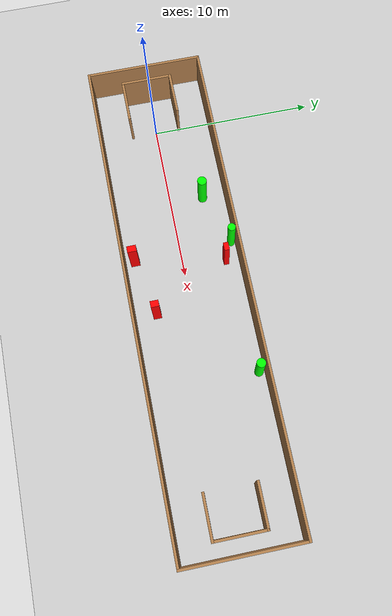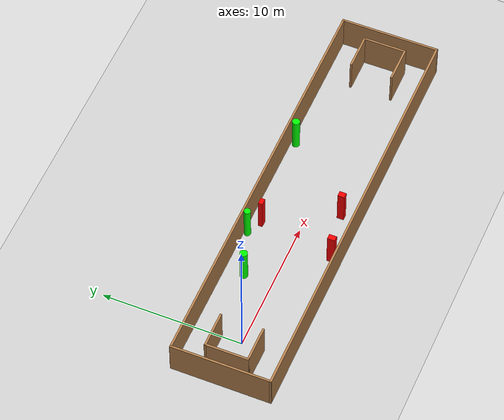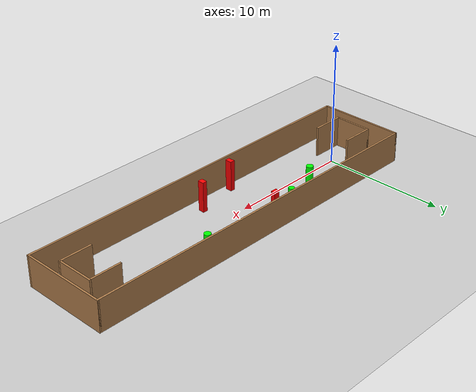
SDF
<sdf version="1.7">
 <world name="default">
  <light name="sun" type="directional">
   <pose>0 0 10 0 -0 0</pose>
   <diffuse>0.8 0.8 0.8 1</diffuse>
   <specular>0.2 0.2 0.2 1</specular>
   <attenuation>
    <range>1000</range>
    <constant>0.9</constant>
    <linear>0.01</linear>
    <quadratic>0.001</quadratic>
   </attenuation>
   <direction>-0.5 0.1 -0.9</direction>
   <spot><inner_angle>0</inner_angle><outer_angle>0</outer_angle><falloff>0</falloff></spot>
  </light>
  <model name="ground_plane">
   <static>1</static>
   <link name="link">
    <collision name="collision">
     <geometry><plane><normal>0 0 1</normal><size>100 100</size></plane></geometry>
     <surface>
      <contact><collide_bitmask>65535</collide_bitmask></contact>
      <friction><ode><mu>100</mu><mu2>50</mu2></ode></friction>
     </surface>
    </collision>
    <visual name="visual">
     <cast_shadows>0</cast_shadows>
     <geometry><plane><normal>0 0 1</normal><size>100 100</size></plane></geometry>
     <material>
      <script><uri>file://media/materials/scripts/gazebo.material</uri><name>Gazebo/Grey</name></script>
     </material>
    </visual>
   </link>
  </model>
  <gravity>0 0 -9.8</gravity>
  <magnetic_field>6e-06 2.3e-05 -4.2e-05</magnetic_field>
  <atmosphere type="adiabatic"/>
  <physics type="ode">
   <max_step_size>0.001</max_step_size>
   <real_time_factor>1</real_time_factor>
   <real_time_update_rate>1000</real_time_update_rate>
  </physics>
  <scene><ambient>0.4 0.4 0.4 1</ambient><background>0.7 0.7 0.7 1</background><shadows>1</shadows></scene>
  <spherical_coordinates>
   <surface_model>EARTH_WGS84</surface_model>
   <latitude_deg>0</latitude_deg>
   <longitude_deg>0</longitude_deg>
   <elevation>0</elevation>
   <heading_deg>0</heading_deg>
  </spherical_coordinates>
  <model name="my_base_walls">
   <link name="Wall_0">
    <collision name="Wall_0_Collision">
     <geometry><box><size>7.15 0.15 2.5</size></box></geometry>
     <pose>0 0 1.25 0 -0 0</pose>
    </collision>
    <visual name="Wall_0_Visual">
     <pose>0 0 1.25 0 -0 0</pose>
     <geometry><box><size>7.15 0.15 2.5</size></box></geometry>
     <material>
      <script><uri>file://media/materials/scripts/gazebo.material</uri><name>Gazebo/Wood</name></script>
      <ambient>1 1 1 1</ambient>
     </material>
     <meta><layer>0</layer></meta>
    </visual>
    <pose>-15 0 0 0 -0 1.5708</pose>
   </link>
   <link name="Wall_10">
    <collision name="Wall_10_Collision">
     <geometry><box><size>2.65 0.15 2.5</size></box></geometry>
     <pose>0 0 1.25 0 -0 0</pose>
    </collision>
    <visual name="Wall_10_Visual">
     <pose>0 0 1.25 0 -0 0</pose>
     <geometry><box><size>2.65 0.15 2.5</size></box></geometry>
     <material>
      <script><uri>file://media/materials/scripts/gazebo.material</uri><name>Gazebo/Wood</name></script>
      <ambient>1 1 1 1</ambient>
     </material>
     <meta><layer>0</layer></meta>
    </visual>
    <pose>-12.75 -1.5 0 0 -0 0</pose>
   </link>
   <link name="Wall_12">
    <collision name="Wall_12_Collision">
     <geometry><box><size>2.65 0.15 2.5</size></box></geometry>
     <pose>0 0 1.25 0 -0 0</pose>
    </collision>
    <visual name="Wall_12_Visual">
     <pose>0 0 1.25 0 -0 0</pose>
     <geometry><box><size>2.65 0.15 2.5</size></box></geometry>
     <material>
      <script><uri>file://media/materials/scripts/gazebo.material</uri><name>Gazebo/Wood</name></script>
      <ambient>1 1 1 1</ambient>
     </material>
     <meta><layer>0</layer></meta>
    </visual>
    <pose>-12.75 1.5 0 0 -0 0</pose>
   </link>
   <link name="Wall_14">
    <collision name="Wall_14_Collision">
     <geometry><box><size>3.15 0.15 2.5</size></box></geometry>
     <pose>0 0 1.25 0 -0 0</pose>
    </collision>
    <visual name="Wall_14_Visual">
     <pose>0 0 1.25 0 -0 0</pose>
     <geometry><box><size>3.15 0.15 2.5</size></box></geometry>
     <material>
      <script><uri>file://media/materials/scripts/gazebo.material</uri><name>Gazebo/Wood</name></script>
      <ambient>1 1 1 1</ambient>
     </material>
     <meta><layer>0</layer></meta>
    </visual>
    <pose>14 0 0 0 -0 -1.5708</pose>
   </link>
   <link name="Wall_15">
    <collision name="Wall_15_Collision">
     <geometry><box><size>2.65 0.15 2.5</size></box></geometry>
     <pose>0 0 1.25 0 -0 0</pose>
    </collision>
    <visual name="Wall_15_Visual">
     <pose>0 0 1.25 0 -0 0</pose>
     <geometry><box><size>2.65 0.15 2.5</size></box></geometry>
     <material>
      <script><uri>file://media/materials/scripts/gazebo.material</uri><name>Gazebo/Wood</name></script>
      <ambient>1 1 1 1</ambient>
     </material>
     <meta><layer>0</layer></meta>
    </visual>
    <pose>12.75 -1.5 0 0 -0 3.14159</pose>
   </link>
   <link name="Wall_17">
    <collision name="Wall_17_Collision">
     <geometry><box><size>2.65 0.15 2.5</size></box></geometry>
     <pose>0 0 1.25 0 -0 0</pose>
    </collision>
    <visual name="Wall_17_Visual">
     <pose>0 0 1.25 0 -0 0</pose>
     <geometry><box><size>2.65 0.15 2.5</size></box></geometry>
     <material>
      <script><uri>file://media/materials/scripts/gazebo.material</uri><name>Gazebo/Wood</name></script>
      <ambient>1 1 1 1</ambient>
     </material>
     <meta><layer>0</layer></meta>
    </visual>
    <pose>12.75 1.5 0 0 -0 3.14159</pose>
   </link>
   <link name="Wall_2">
    <collision name="Wall_2_Collision">
     <geometry><box><size>30.15 0.15 2.5</size></box></geometry>
     <pose>0 0 1.25 0 -0 0</pose>
    </collision>
    <visual name="Wall_2_Visual">
     <pose>0 0 1.25 0 -0 0</pose>
     <geometry><box><size>30.15 0.15 2.5</size></box></geometry>
     <material>
      <script><uri>file://media/materials/scripts/gazebo.material</uri><name>Gazebo/Wood</name></script>
      <ambient>1 1 1 1</ambient>
     </material>
     <meta><layer>0</layer></meta>
    </visual>
    <pose>-0 -3.5 0 0 -0 0</pose>
   </link>
   <link name="Wall_4">
    <collision name="Wall_4_Collision">
     <geometry><box><size>30.15 0.15 2.5</size></box></geometry>
     <pose>0 0 1.25 0 -0 0</pose>
    </collision>
    <visual name="Wall_4_Visual">
     <pose>0 0 1.25 0 -0 0</pose>
     <geometry><box><size>30.15 0.15 2.5</size></box></geometry>
     <material>
      <script><uri>file://media/materials/scripts/gazebo.material</uri><name>Gazebo/Wood</name></script>
      <ambient>1 1 1 1</ambient>
     </material>
     <meta><layer>0</layer></meta>
    </visual>
    <pose>-0 3.5 0 0 -0 0</pose>
   </link>
   <link name="Wall_6">
    <collision name="Wall_6_Collision">
     <geometry><box><size>7.15 0.15 2.5</size></box></geometry>
     <pose>0 0 1.25 0 -0 0</pose>
    </collision>
    <visual name="Wall_6_Visual">
     <pose>0 0 1.25 0 -0 0</pose>
     <geometry><box><size>7.15 0.15 2.5</size></box></geometry>
     <material>
      <script><uri>file://media/materials/scripts/gazebo.material</uri><name>Gazebo/Wood</name></script>
      <ambient>1 1 1 1</ambient>
     </material>
     <meta><layer>0</layer></meta>
    </visual>
    <pose>15 0 0 0 -0 -1.5708</pose>
   </link>
   <link name="Wall_9">
    <collision name="Wall_9_Collision">
     <geometry><box><size>3.15 0.15 2.5</size></box></geometry>
     <pose>0 0 1.25 0 -0 0</pose>
    </collision>
    <visual name="Wall_9_Visual">
     <pose>0 0 1.25 0 -0 0</pose>
     <geometry><box><size>3.15 0.15 2.5</size></box></geometry>
     <material>
      <script><uri>file://media/materials/scripts/gazebo.material</uri><name>Gazebo/Wood</name></script>
      <ambient>1 1 1 1</ambient>
     </material>
     <meta><layer>0</layer></meta>
    </visual>
    <pose>-14 0 0 0 -0 -1.5708</pose>
   </link>
   <static>1</static>
   <pose>11.5 0 0 0 -0 0</pose>
  </model>
  <model name="cylinder1">
   <static>1</static>
   <link name="link">
    <inertial>
     <mass>1</mass>
     <inertia><ixx>0.5</ixx><ixy>0</ixy><ixz>0</ixz><iyy>0.5</iyy><iyz>0</iyz><izz>1</izz></inertia>
    </inertial>
    <collision name="collision">
     <geometry><cylinder><radius>0.2359946716126712</radius><length>2.5</length></cylinder></geometry>
    </collision>
    <visual name="visual">
     <geometry><cylinder><radius>0.2359946716126712</radius><length>2.5</length></cylinder></geometry>
     <material>
      <ambient>0 1 0 1</ambient>
      <diffuse>0 1 0 1</diffuse>
      <specular>0.1 0.1 0.1 1</specular>
      <emissive>0 0 0 0</emissive>
     </material>
    </visual>
   </link>
   <pose>8.433564592765514 3.184572764295776 1.25 0 0 0</pose>
  </model>
  <model name="cylinder2">
   <static>1</static>
   <link name="link">
    <inertial>
     <mass>1</mass>
     <inertia><ixx>0.5</ixx><ixy>0</ixy><ixz>0</ixz><iyy>0.5</iyy><iyz>0</iyz><izz>1</izz></inertia>
    </inertial>
    <collision name="collision">
     <geometry><cylinder><radius>0.28007052988967696</radius><length>2.5</length></cylinder></geometry>
    </collision>
    <visual name="visual">
     <geometry><cylinder><radius>0.28007052988967696</radius><length>2.5</length></cylinder></geometry>
     <material>
      <ambient>0 1 0 1</ambient>
      <diffuse>0 1 0 1</diffuse>
      <specular>0.1 0.1 0.1 1</specular>
      <emissive>0 0 0 0</emissive>
     </material>
    </visual>
   </link>
   <pose>5.132110736474191 2.0508324509260696 1.25 0 0 0</pose>
  </model>
  <model name="cylinder3">
   <static>1</static>
   <link name="link">
    <inertial>
     <mass>1</mass>
     <inertia><ixx>0.5</ixx><ixy>0</ixy><ixz>0</ixz><iyy>0.5</iyy><iyz>0</iyz><izz>1</izz></inertia>
    </inertial>
    <collision name="collision">
     <geometry><cylinder><radius>0.2683700014580167</radius><length>2.5</length></cylinder></geometry>
    </collision>
    <visual name="visual">
     <geometry><cylinder><radius>0.2683700014580167</radius><length>2.5</length></cylinder></geometry>
     <material>
      <ambient>0 1 0 1</ambient>
      <diffuse>0 1 0 1</diffuse>
      <specular>0.1 0.1 0.1 1</specular>
      <emissive>0 0 0 0</emissive>
     </material>
    </visual>
   </link>
   <pose>16.772236535274242 3.0870984564840187 1.25 0 0 0</pose>
  </model>
  <model name="box1">
   <static>1</static>
   <link name="link">
    <inertial>
     <mass>1</mass>
     <inertia><ixx>0.083</ixx><ixy>0</ixy><ixz>0</ixz><iyy>0.083</iyy><iyz>0</iyz><izz>0.083</izz></inertia>
    </inertial>
    <collision name="collision">
     <geometry><box><size>0.38393923493521387 0.5466726593577845 2.5</size></box></geometry>
    </collision>
    <visual name="visual">
     <geometry><box><size>0.38393923493521387 0.5466726593577845 2.5</size></box></geometry>
     <material>
      <ambient>1 0 0 1</ambient>
      <diffuse>1 0 0 1</diffuse>
      <specular>0.1 0.1 0.1 1</specular>
      <emissive>0 0 0 0</emissive>
     </material>
    </visual>
    <sensor name="my_contact" type="contact">
     <contact><collision>box_collision</collision><topic>__default_topic__</topic></contact>
    </sensor>
   </link>
   <pose>8.599443560974521 -2.8548410848806136 1.25 0 0 0</pose>
  </model>
  <model name="box2">
   <static>1</static>
   <link name="link">
    <inertial>
     <mass>1</mass>
     <inertia><ixx>0.083</ixx><ixy>0</ixy><ixz>0</ixz><iyy>0.083</iyy><iyz>0</iyz><izz>0.083</izz></inertia>
    </inertial>
    <collision name="collision">
     <geometry><box><size>0.38358204745474905 0.48879679929742365 2.5</size></box></geometry>
    </collision>
    <visual name="visual">
     <geometry><box><size>0.38358204745474905 0.48879679929742365 2.5</size></box></geometry>
     <material>
      <ambient>1 0 0 1</ambient>
      <diffuse>1 0 0 1</diffuse>
      <specular>0.1 0.1 0.1 1</specular>
      <emissive>0 0 0 0</emissive>
     </material>
    </visual>
    <sensor name="my_contact" type="contact">
     <contact><collision>box_collision</collision><topic>__default_topic__</topic></contact>
    </sensor>
   </link>
   <pose>12.175903927038098 -2.1324104073080337 1.25 0 0 0</pose>
  </model>
  <model name="box3">
   <static>1</static>
   <link name="link">
    <inertial>
     <mass>1</mass>
     <inertia><ixx>0.083</ixx><ixy>0</ixy><ixz>0</ixz><iyy>0.083</iyy><iyz>0</iyz><izz>0.083</izz></inertia>
    </inertial>
    <collision name="collision">
     <geometry><box><size>0.48353253343466246 0.308166247183885 2.5</size></box></geometry>
    </collision>
    <visual name="visual">
     <geometry><box><size>0.48353253343466246 0.308166247183885 2.5</size></box></geometry>
     <material>
      <ambient>1 0 0 1</ambient>
      <diffuse>1 0 0 1</diffuse>
      <specular>0.1 0.1 0.1 1</specular>
      <emissive>0 0 0 0</emissive>
     </material>
    </visual>
    <sensor name="my_contact" type="contact">
     <contact><collision>box_collision</collision><topic>__default_topic__</topic></contact>
    </sensor>
   </link>
   <pose>9.560650809684928 2.620448351872753 1.25 0 0 0</pose>
  </model>
 </world>
</sdf>
